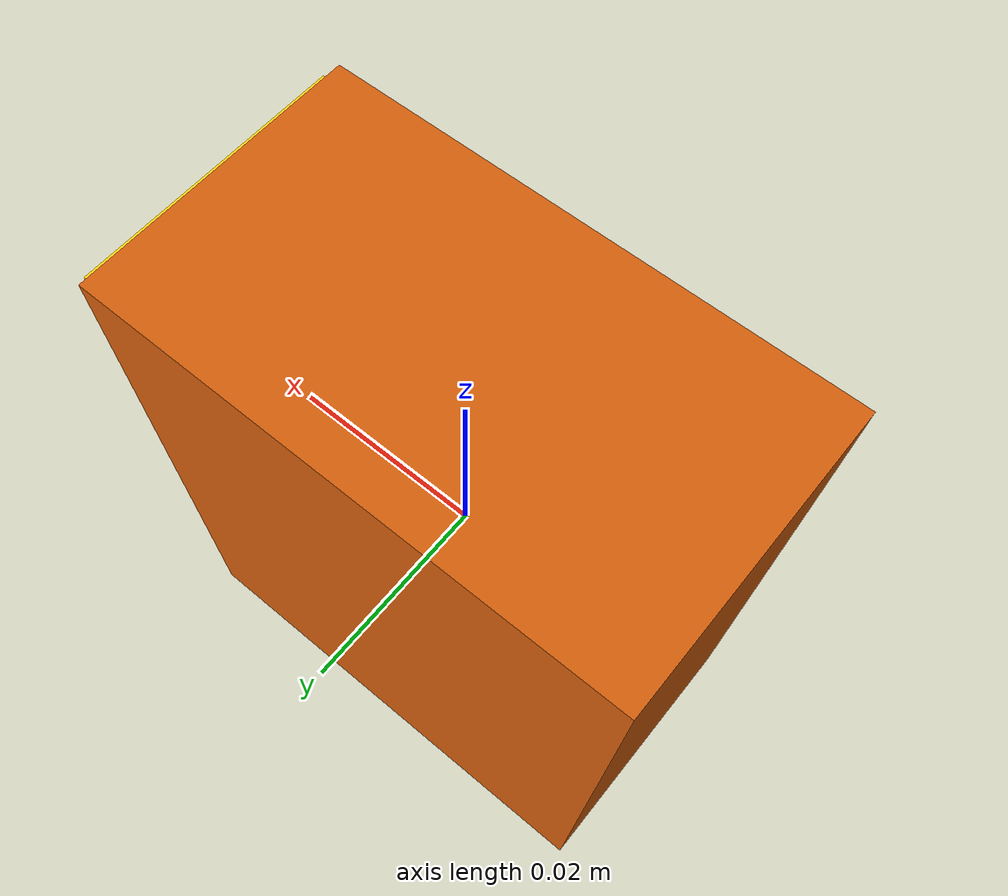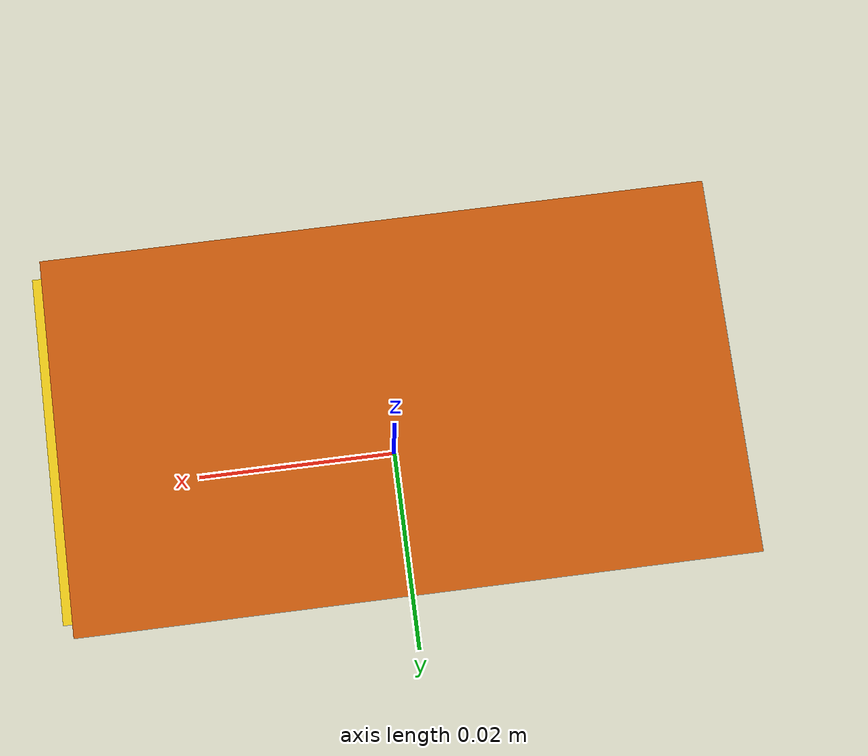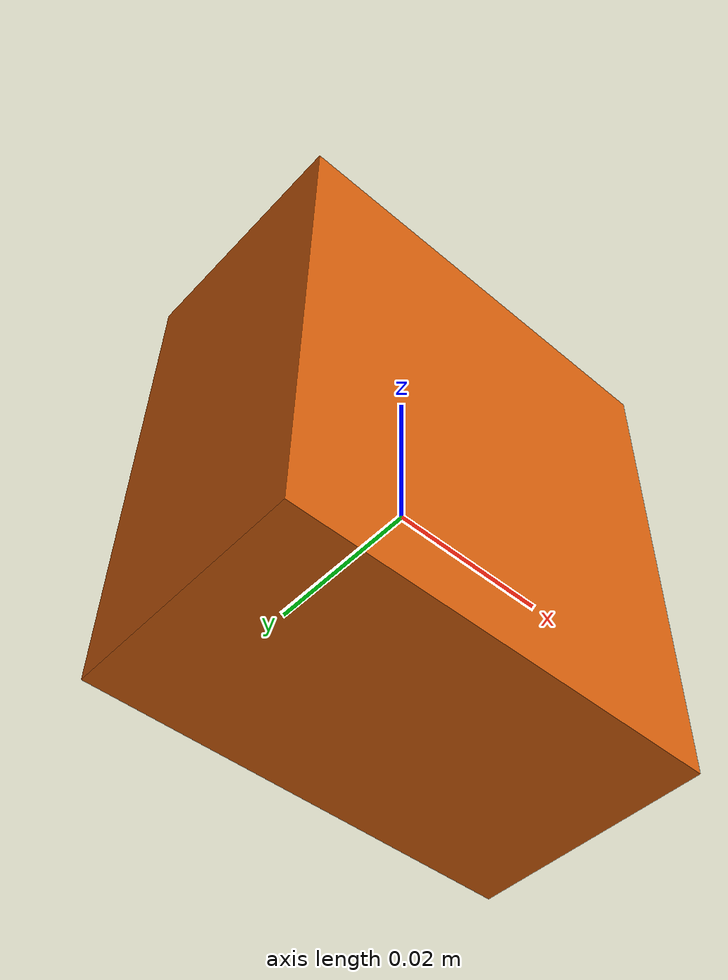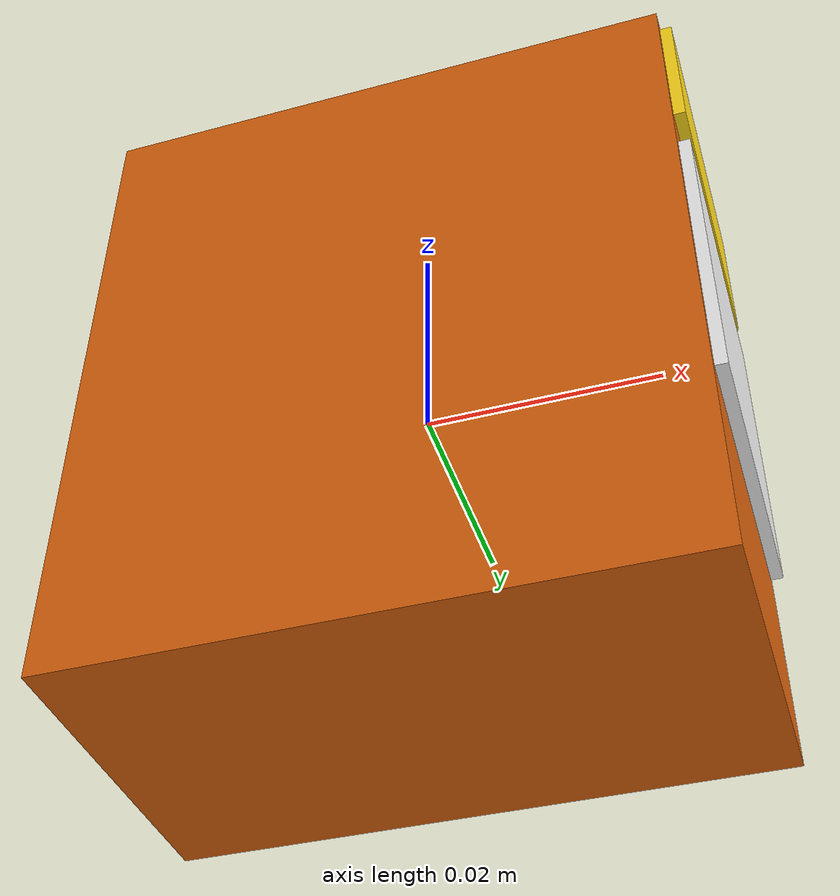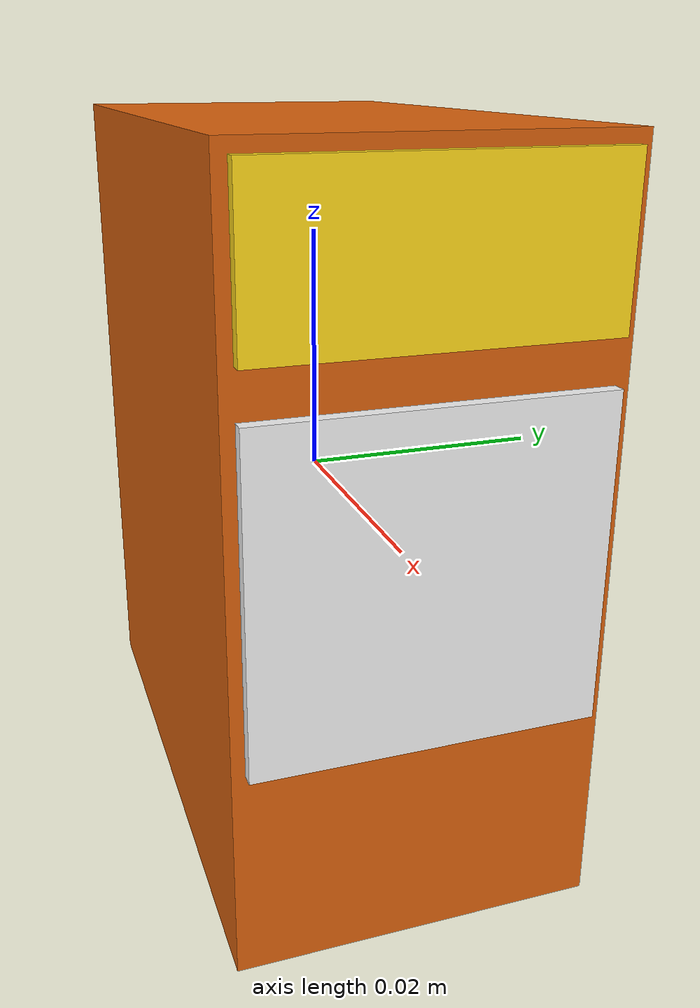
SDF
<?xml version="1.0" ?>
<sdf version="1.6">
  <!--
    Orange vitamin box  -  WIDE & SHALLOW  0.050(x) x 0.028(y) x 0.058(z) m
    y = 28 mm  ->  just within ~30 mm gripper opening
    Mass 55 g
  -->
  <model name="medicine_packet_c">
    <static>false</static>
    <link name="link">
      <inertial>
        <mass>0.055</mass>
        <inertia>
          <ixx>0.000019</ixx><ixy>0</ixy><ixz>0</ixz>
          <iyy>0.000027</iyy><iyz>0</iyz>
          <izz>0.000015</izz>
        </inertia>
      </inertial>
      <collision name="col">
        <geometry><box><size>0.050 0.028 0.058</size></box></geometry>
        <surface><friction><ode><mu>0.9</mu><mu2>0.9</mu2></ode></friction></surface>
      </collision>
      <!-- Main body - deep orange -->
      <visual name="body">
        <geometry><box><size>0.050 0.028 0.058</size></box></geometry>
        <material>
          <ambient>0.85 0.38 0.05 1</ambient>
          <diffuse>0.85 0.38 0.05 1</diffuse>
          <specular>0.25 0.15 0.05 1</specular>
        </material>
      </visual>
      <!-- White label band -->
      <visual name="label">
        <pose>0.0255 0 0 0 0 0</pose>
        <geometry><box><size>0.001 0.026 0.025</size></box></geometry>
        <material><ambient>0.95 0.95 0.95 1</ambient><diffuse>0.95 0.95 0.95 1</diffuse></material>
      </visual>
      <!-- Yellow top stripe -->
      <visual name="stripe_top">
        <pose>0.0255 0 0.022 0 0 0</pose>
        <geometry><box><size>0.001 0.026 0.012</size></box></geometry>
        <material><ambient>1.0 0.85 0.10 1</ambient><diffuse>1.0 0.85 0.10 1</diffuse></material>
      </visual>
    </link>
  </model>
</sdf>
